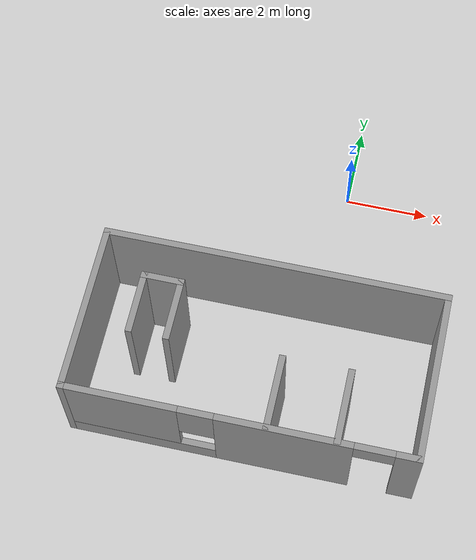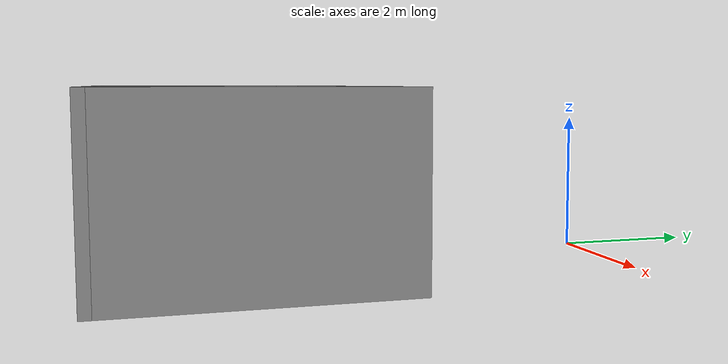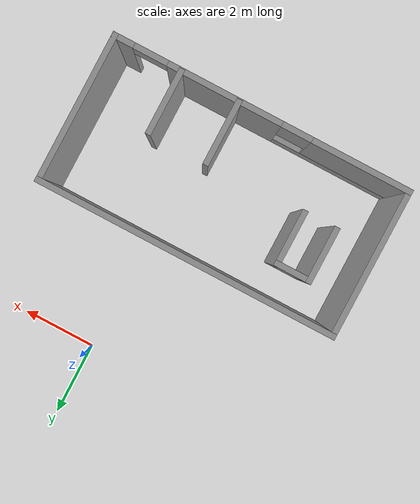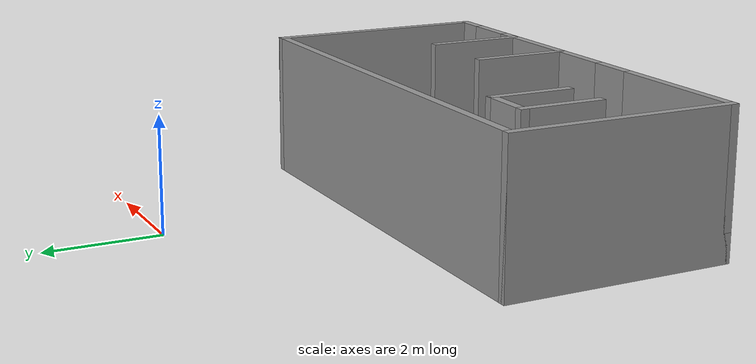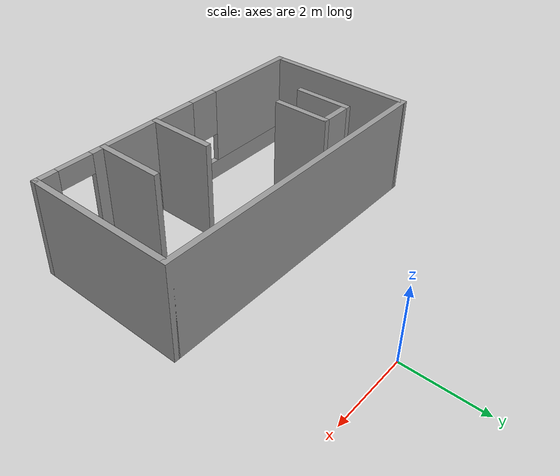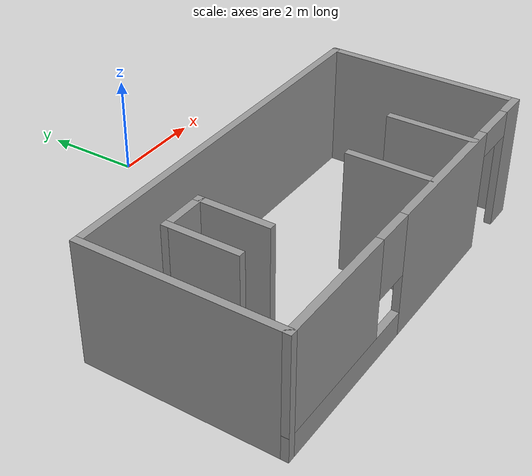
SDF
<?xml version='1.0'?>
<sdf version='1.7'>
  <model name='Map1'>
    <pose>-1.135 -3.6325 0 0 -0 0</pose>
    <link name='Wall_0'>
      <collision name='Wall_0_Collision'>
        <geometry>
          <box>
            <size>8 0.15 2.5</size>
          </box>
        </geometry>
        <pose>0 0 1.25 0 -0 0</pose>
      </collision>
      <visual name='Wall_0_Visual'>
        <pose>0 0 1.25 0 -0 0</pose>
        <geometry>
          <box>
            <size>8 0.15 2.5</size>
          </box>
        </geometry>
        <material>
          <script>
            <uri>file://media/materials/scripts/gazebo.material</uri>
            <name>Gazebo/Grey</name>
          </script>
          <ambient>1 1 1 1</ambient>
        </material>
        <meta>
          <layer>0</layer>
        </meta>
      </visual>
      <pose>0 0.2925 0 0 -0 0</pose>
    </link>
    <link name='Wall_1'>
      <collision name='Wall_1_Collision'>
        <geometry>
          <box>
            <size>4 0.15 2.5</size>
          </box>
        </geometry>
        <pose>0 0 1.25 0 -0 0</pose>
      </collision>
      <visual name='Wall_1_Visual'>
        <pose>0 0 1.25 0 -0 0</pose>
        <geometry>
          <box>
            <size>4 0.15 2.5</size>
          </box>
        </geometry>
        <material>
          <script>
            <uri>file://media/materials/scripts/gazebo.material</uri>
            <name>Gazebo/Grey</name>
          </script>
          <ambient>1 1 1 1</ambient>
        </material>
        <meta>
          <layer>0</layer>
        </meta>
      </visual>
      <pose>3.925 -1.6325 0 0 -0 -1.5708</pose>
    </link>
    <link name='Wall_10'>
      <collision name='Wall_10_Collision'>
        <geometry>
          <box>
            <size>1.75 0.15 2.5</size>
          </box>
        </geometry>
        <pose>0 0 1.25 0 -0 0</pose>
      </collision>
      <visual name='Wall_10_Visual'>
        <pose>0 0 1.25 0 -0 0</pose>
        <geometry>
          <box>
            <size>1.75 0.15 2.5</size>
          </box>
        </geometry>
        <material>
          <script>
            <uri>file://media/materials/scripts/gazebo.material</uri>
            <name>Gazebo/Grey</name>
          </script>
          <ambient>1 1 1 1</ambient>
        </material>
        <meta>
          <layer>0</layer>
        </meta>
      </visual>
      <pose>2.14892 -2.73121 0 0 -0 1.5708</pose>
    </link>
    <link name='Wall_12'>
      <collision name='Wall_12_Collision'>
        <geometry>
          <box>
            <size>1.75 0.15 2.5</size>
          </box>
        </geometry>
        <pose>0 0 1.25 0 -0 0</pose>
      </collision>
      <visual name='Wall_12_Visual'>
        <pose>0 0 1.25 0 -0 0</pose>
        <geometry>
          <box>
            <size>1.75 0.15 2.5</size>
          </box>
        </geometry>
        <material>
          <script>
            <uri>file://media/materials/scripts/gazebo.material</uri>
            <name>Gazebo/Grey</name>
          </script>
          <ambient>1 1 1 1</ambient>
        </material>
        <meta>
          <layer>0</layer>
        </meta>
      </visual>
      <pose>0.613946 -2.73121 0 0 -0 1.5708</pose>
    </link>
    <link name='Wall_2'>
      <pose>0 -3.5575 0 0 -0 3.14159</pose>
      <visual name='Wall_2_Visual_0'>
        <pose>-3.70526 0 1.25 0 -0 0</pose>
        <geometry>
          <box>
            <size>0.589488 0.15 2.5</size>
          </box>
        </geometry>
        <material>
          <script>
            <uri>file://media/materials/scripts/gazebo.material</uri>
            <name>Gazebo/Grey</name>
          </script>
          <ambient>1 1 1 1</ambient>
        </material>
        <meta>
          <layer>0</layer>
        </meta>
      </visual>
      <collision name='Wall_2_Collision_0'>
        <geometry>
          <box>
            <size>0.589488 0.15 2.5</size>
          </box>
        </geometry>
        <pose>-3.70526 0 1.25 0 -0 0</pose>
      </collision>
      <visual name='Wall_2_Visual_1'>
        <pose>-0.985922 0 1.25 0 -0 0</pose>
        <geometry>
          <box>
            <size>3.04918 0.15 2.5</size>
          </box>
        </geometry>
        <material>
          <script>
            <uri>file://media/materials/scripts/gazebo.material</uri>
            <name>Gazebo/Grey</name>
          </script>
          <ambient>1 1 1 1</ambient>
        </material>
        <meta>
          <layer>0</layer>
        </meta>
      </visual>
      <collision name='Wall_2_Collision_1'>
        <geometry>
          <box>
            <size>3.04918 0.15 2.5</size>
          </box>
        </geometry>
        <pose>-0.985922 0 1.25 0 -0 0</pose>
      </collision>
      <visual name='Wall_2_Visual_2'>
        <pose>2.26933 0 0.25 0 -0 0</pose>
        <geometry>
          <box>
            <size>3.46133 0.15 0.5</size>
          </box>
        </geometry>
        <material>
          <script>
            <uri>file://media/materials/scripts/gazebo.material</uri>
            <name>Gazebo/Grey</name>
          </script>
          <ambient>1 1 1 1</ambient>
        </material>
        <meta>
          <layer>0</layer>
        </meta>
      </visual>
      <collision name='Wall_2_Collision_2'>
        <geometry>
          <box>
            <size>3.46133 0.15 0.5</size>
          </box>
        </geometry>
        <pose>2.26933 0 0.25 0 -0 0</pose>
      </collision>
      <visual name='Wall_2_Visual_3'>
        <pose>2.66933 0 1.5 0 -0 0</pose>
        <geometry>
          <box>
            <size>2.66133 0.15 2</size>
          </box>
        </geometry>
        <material>
          <script>
            <uri>file://media/materials/scripts/gazebo.material</uri>
            <name>Gazebo/Grey</name>
          </script>
          <ambient>1 1 1 1</ambient>
        </material>
        <meta>
          <layer>0</layer>
        </meta>
      </visual>
      <collision name='Wall_2_Collision_3'>
        <geometry>
          <box>
            <size>2.66133 0.15 2</size>
          </box>
        </geometry>
        <pose>2.66933 0 1.5 0 -0 0</pose>
      </collision>
      <visual name='Wall_2_Visual_4'>
        <pose>0.938669 0 1.9 0 -0 0</pose>
        <geometry>
          <box>
            <size>0.8 0.15 1.2</size>
          </box>
        </geometry>
        <material>
          <script>
            <uri>file://media/materials/scripts/gazebo.material</uri>
            <name>Gazebo/Grey</name>
          </script>
          <ambient>1 1 1 1</ambient>
        </material>
        <meta>
          <layer>0</layer>
        </meta>
      </visual>
      <collision name='Wall_2_Collision_4'>
        <geometry>
          <box>
            <size>0.8 0.15 1.2</size>
          </box>
        </geometry>
        <pose>0.938669 0 1.9 0 -0 0</pose>
      </collision>
      <visual name='Wall_2_Visual_5'>
        <pose>-2.96051 0 2.25 0 -0 0</pose>
        <geometry>
          <box>
            <size>0.9 0.15 0.5</size>
          </box>
        </geometry>
        <material>
          <script>
            <uri>file://media/materials/scripts/gazebo.material</uri>
            <name>Gazebo/Grey</name>
          </script>
          <ambient>1 1 1 1</ambient>
        </material>
        <meta>
          <layer>0</layer>
        </meta>
      </visual>
      <collision name='Wall_2_Collision_5'>
        <geometry>
          <box>
            <size>0.9 0.15 0.5</size>
          </box>
        </geometry>
        <pose>-2.96051 0 2.25 0 -0 0</pose>
      </collision>
    </link>
    <link name='Wall_3'>
      <collision name='Wall_3_Collision'>
        <geometry>
          <box>
            <size>4 0.15 2.5</size>
          </box>
        </geometry>
        <pose>0 0 1.25 0 -0 0</pose>
      </collision>
      <visual name='Wall_3_Visual'>
        <pose>0 0 1.25 0 -0 0</pose>
        <geometry>
          <box>
            <size>4 0.15 2.5</size>
          </box>
        </geometry>
        <material>
          <script>
            <uri>file://media/materials/scripts/gazebo.material</uri>
            <name>Gazebo/Grey</name>
          </script>
          <ambient>1 1 1 1</ambient>
        </material>
        <meta>
          <layer>0</layer>
        </meta>
      </visual>
      <pose>-3.925 -1.6325 0 0 -0 1.5708</pose>
    </link>
    <link name='Wall_5'>
      <collision name='Wall_5_Collision'>
        <geometry>
          <box>
            <size>1.5 0.15 2.5</size>
          </box>
        </geometry>
        <pose>0 0 1.25 0 -0 0</pose>
      </collision>
      <visual name='Wall_5_Visual'>
        <pose>0 0 1.25 0 -0 0</pose>
        <geometry>
          <box>
            <size>1.5 0.15 2.5</size>
          </box>
        </geometry>
        <material>
          <script>
            <uri>file://media/materials/scripts/gazebo.material</uri>
            <name>Gazebo/Grey</name>
          </script>
          <ambient>1 1 1 1</ambient>
        </material>
        <meta>
          <layer>0</layer>
        </meta>
      </visual>
      <pose>-2.82651 -1.27741 0 0 -0 -1.5708</pose>
    </link>
    <link name='Wall_7'>
      <collision name='Wall_7_Collision'>
        <geometry>
          <box>
            <size>1 0.15 2.5</size>
          </box>
        </geometry>
        <pose>0 0 1.25 0 -0 0</pose>
      </collision>
      <visual name='Wall_7_Visual'>
        <pose>0 0 1.25 0 -0 0</pose>
        <geometry>
          <box>
            <size>1 0.15 2.5</size>
          </box>
        </geometry>
        <material>
          <script>
            <uri>file://media/materials/scripts/gazebo.material</uri>
            <name>Gazebo/Grey</name>
          </script>
          <ambient>1 1 1 1</ambient>
        </material>
        <meta>
          <layer>0</layer>
        </meta>
      </visual>
      <pose>-2.40151 -0.602416 0 0 -0 0</pose>
    </link>
    <link name='Wall_8'>
      <collision name='Wall_8_Collision'>
        <geometry>
          <box>
            <size>1.5 0.15 2.5</size>
          </box>
        </geometry>
        <pose>0 0 1.25 0 -0 0</pose>
      </collision>
      <visual name='Wall_8_Visual'>
        <pose>0 0 1.25 0 -0 0</pose>
        <geometry>
          <box>
            <size>1.5 0.15 2.5</size>
          </box>
        </geometry>
        <material>
          <script>
            <uri>file://media/materials/scripts/gazebo.material</uri>
            <name>Gazebo/Grey</name>
          </script>
          <ambient>1 1 1 1</ambient>
        </material>
        <meta>
          <layer>0</layer>
        </meta>
      </visual>
      <pose>-1.97651 -1.27741 0 0 -0 -1.5708</pose>
    </link>
    <static>1</static>
  </model>
</sdf>
